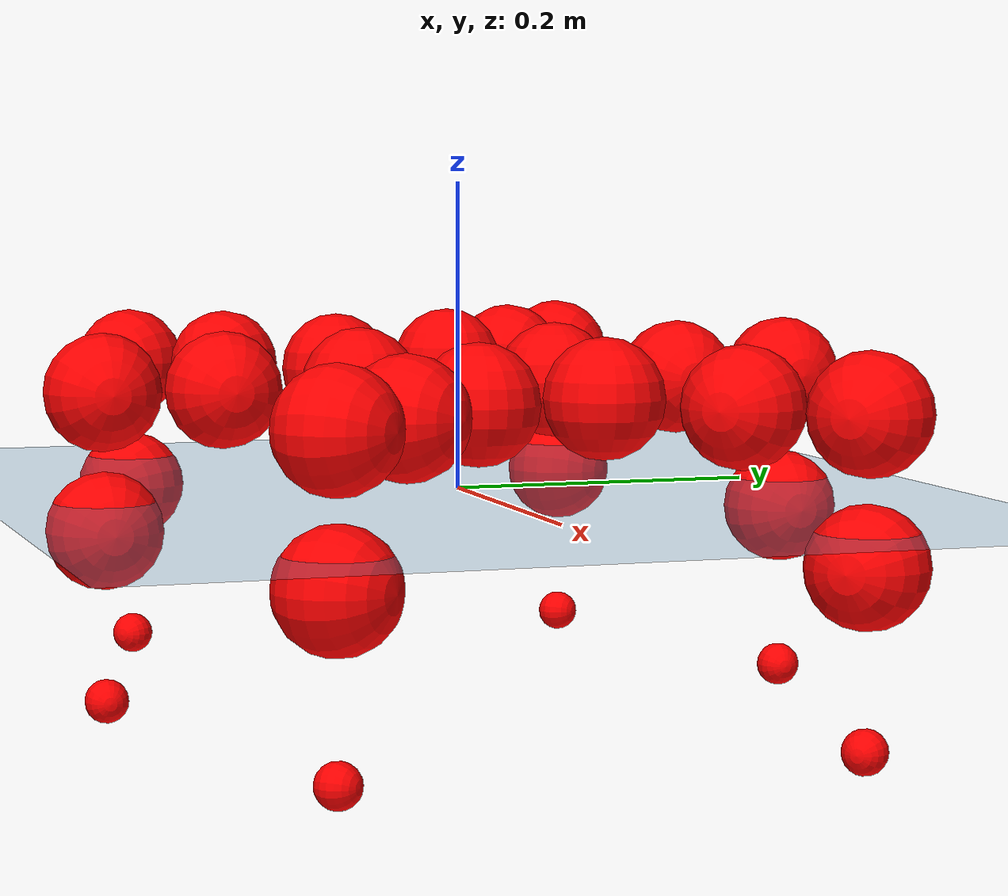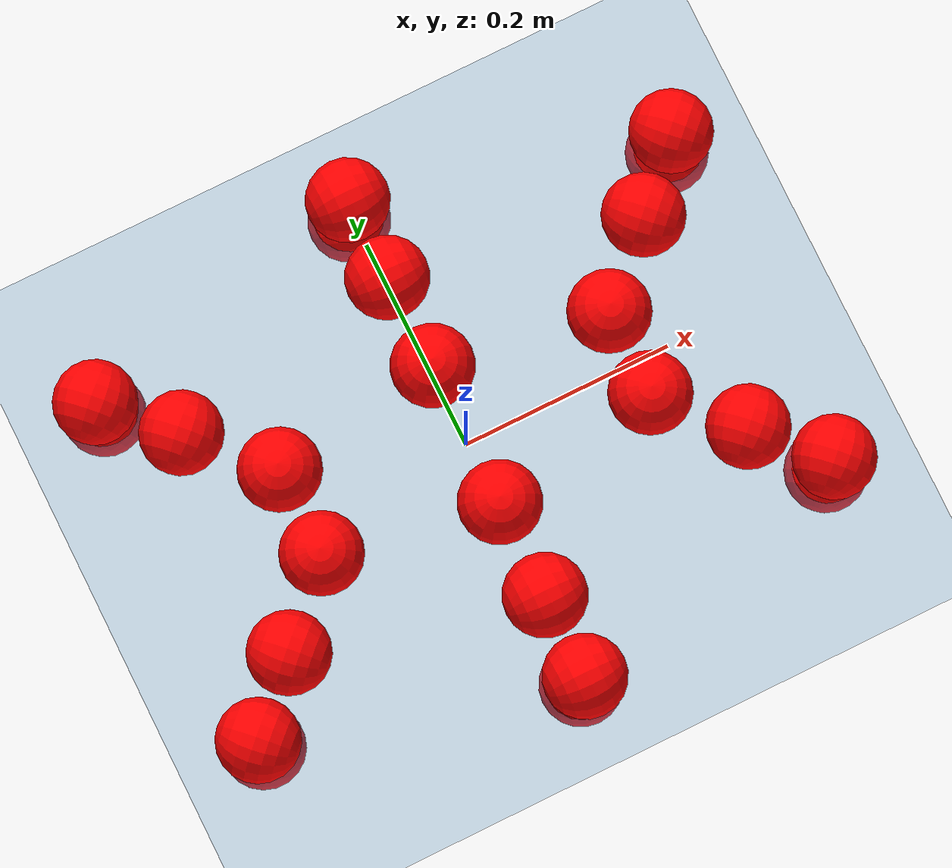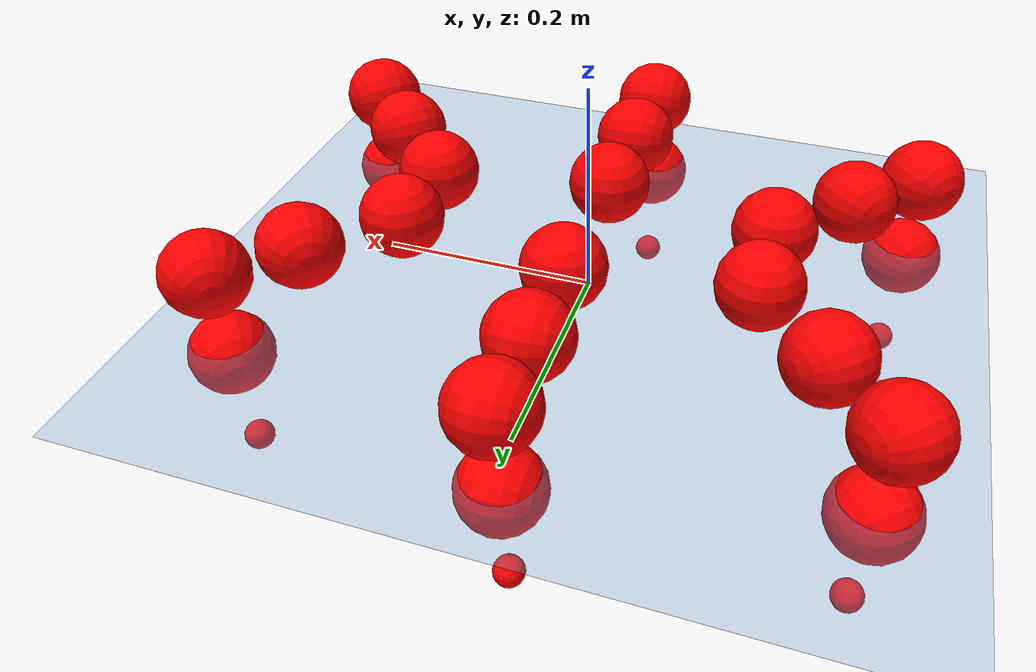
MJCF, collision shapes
<mujoco model="Golem">
  <compiler angle="radian" assetdir="assets" balanceinertia="true" inertiafromgeom="false"/>

  <option timestep="0.005" density="1.2" viscosity="2e-05"/>

  <size nkey="1"/>

  <visual>
    <quality shadowsize="8192"/>
    <map shadowclip="0.5"/>
  </visual>

  <default>
    <default class="/">
      <joint armature="0.01" damping="0.01" frictionloss="0.01"/>
      <geom contype="0" conaffinity="0" group="1" solref="-1000 -80"/>
      <site size="0.01 0.005 0.005" group="5"/>
      <general forcelimited="true" biastype="affine" gainprm="25" biasprm="0 -25 -0.5"/>
      <default class="visual">
        <geom type="mesh" group="2"/>
      </default>
      <default class="collision">
        <geom group="3"/>
      </default>
      <default class="foot">
        <geom size="0.01 0 0" condim="6" group="4" priority="1" solimp="0.015 1 0.01"/>
      </default>
      <default class="reward_collision_sphere">
        <geom group="5" rgba="1 0 0 1"/>
      </default>
    </default>
  </default>

  <asset>
    <texture type="skybox" colorspace="auto" name="//unnamed_texture_0" builtin="gradient" rgb1="0.95 0.95 0.95" rgb2="0.95 0.95 0.95" width="100" height="600"/>
    <texture type="2d" colorspace="auto" name="texplane" builtin="checker" rgb1="0.345 0.575 0.748" rgb2="0.345 0.575 0.748" markrgb="1 1 1" width="512" height="512"/>
    <material name="MatPlane" class="/" texture="texplane" texuniform="true" texrepeat="2 2" specular="0.9"/>
    <mesh name="body" class="/" file="body.stl" scale="0.001 0.001 0.001"/>
    <mesh name="coxa" class="/" file="coxa.stl" scale="0.001 0.001 0.001"/>
    <mesh name="femur" class="/" file="femur.stl" scale="0.001 0.001 0.001"/>
    <mesh name="tibia" class="/" file="tibia.stl" scale="0.001 0.001 0.001"/>
    <mesh name="tarsus" class="/" file="tarsus.stl" scale="0.001 0.001 0.001"/>
  </asset>

  <worldbody>
    <geom name="floor" class="/" size="100 100 0.125" type="plane" group="0" material="MatPlane"/>
    <light name="toplight_shadow" class="/" pos="0 0 5" dir="0.0990148 0.0990148 -0.990148" type="directional" ambient="0.04 0.04 0.04" diffuse="0.55 0.55 0.55" specular="0.12 0.12 0.12"/>
    <light name="toplight_fill" class="/" pos="0 0 5" dir="0.0990148 0.0990148 -0.990148" type="directional" castshadow="false" ambient="0.04 0.04 0.04" diffuse="0.3 0.3 0.3" specular="0.08 0.08 0.08"/>
    <body name="trunk" pos="0.000863473 0.000944862 0.00051612" quat="1 1.11323e-05 -0.000336863 3.97755e-05">
      <inertial pos="-0.000548045 0.000191407 -0.00465872" quat="0.999989 0.0028491 -0.00275423 -0.00247438" mass="3.0756" diaginertia="0.0108247 0.0021566 0.0141254"/>
      <joint name="//unnamed_joint_0" type="free"/>
      <geom name="//unnamed_geom_1" class="/" pos="0 0 0.0688218" quat="1 0 0 0" type="mesh" rgba="0.9 0.9 0.9 1" mesh="body"/>
      <site name="imu" class="/" pos="0.131677 -0.00433999 0.106453" size="0.00943493"/>
      <camera name="track" class="/" pos="0 -1.47265 0" quat="0.707107 0.707107 0 0" mode="trackcom"/>
      <camera name="ego_camera" class="/" pos="0.132446 0 0.107534" quat="-0.5 -0.5 0.5 0.5"/>
      <body name="coxa_RR" pos="-0.180709 -0.0612644 0.0684536" quat="0.382821 -4.17301e-05 -0.000256261 -0.923822">
        <inertial pos="-0.000140738 0.000385772 0.000210018" quat="0.999999 -0.000472951 0.000754707 0.000609892" mass="0.168491" diaginertia="0.0111415 0.00216574 0.0141885"/>
        <joint name="coxa_joint_RR" class="/" pos="0 0 0" axis="0.00159925 -0.00270568 -0.999995" range="-3.13918 3.14984" armature="0.00928852" damping="0.0111023" frictionloss="0.00948468"/>
        <geom name="//unnamed_geom_2" class="/" type="mesh" rgba="0.2 0.2 0.2 1" mesh="coxa"/>
        <geom name="//unnamed_geom_3" class="reward_collision_sphere" size="0.0377397" pos="-0.0305644 0 0"/>
        <body name="femur_RR" pos="0.0602885 0.00169785 -0.000247384" quat="0.500018 -0.499966 0.500019 0.499997">
          <inertial pos="-0.000857987 1.01775e-05 -0.00142742" quat="0.999985 0.000784282 0.00466609 -0.00267284" mass="0.168464" diaginertia="0.011021 0.0021807 0.0144181"/>
          <joint name="femur_joint_RR" class="/" pos="0 0 0" axis="0.00412066 -0.00142676 -0.99999" range="-3.14284 3.14165" armature="0.00950293" damping="0.00118185" frictionloss="0.00943787"/>
          <geom name="//unnamed_geom_4" class="/" type="mesh" rgba="0.9 0.9 0.9 1" mesh="femur"/>
          <geom name="//unnamed_geom_5" class="reward_collision_sphere" size="0.0377397"/>
          <body name="tibia_RR" pos="0.00102643 -0.0800685 -0.000399988" quat="-3.46731e-05 1 -2.27254e-05 -1.89218e-06">
            <inertial pos="0.000284646 0.000246908 -1.47502e-05" quat="0.999989 0.00348969 -0.00248668 -0.00201206" mass="0.169928" diaginertia="0.0111178 0.00218909 0.0146438"/>
            <joint name="tibia_joint_RR" class="/" pos="0 0 0" axis="-0.000485445 0.000114088 1" range="-3.12019 3.13613" armature="0.00982227" damping="0" frictionloss="0.00965287"/>
            <geom name="//unnamed_geom_6" class="/" type="mesh" rgba="0.2 0.2 0.2 1" mesh="tibia"/>
            <geom name="//unnamed_geom_7" class="reward_collision_sphere" size="0.0377397"/>
            <body name="tarsus_RR" pos="0.0895829 -0.00040974 -0.000700457" quat="1 -0.000107221 3.4757e-05 7.4685e-05">
              <inertial pos="0.0624578 0.000494142 -7.99311e-05" quat="0.496889 0.498727 0.500115 0.50424" mass="0.172947" diaginertia="0.0109987 0.00218308 0.0145678"/>
              <joint name="tarsus_joint_RR" class="/" pos="0 0 0" axis="0.000225735 -0.0003256 1" range="-3.13242 3.15549" armature="0.00969612" damping="0.0408573" frictionloss="0.00951924"/>
              <geom name="//unnamed_geom_8" class="/" type="mesh" rgba="0.9 0.9 0.9 1" mesh="tarsus"/>
              <geom name="foot_1" class="foot" size="0.00926573" pos="0.114107 0 0" quat="0 -0.707107 0 0.707107"/>
              <geom name="//unnamed_geom_10" class="reward_collision_sphere" size="0.0377397"/>
              <geom name="//unnamed_geom_11" class="reward_collision_sphere" size="0.0141524" pos="0.109522 0 0"/>
              <site name="foot_1" class="foot" pos="0.114107 0 0" quat="0 -0.707107 0 0.707107" size="0.00943493"/>
            </body>
          </body>
        </body>
      </body>
      <body name="coxa_RM" pos="-0.000493511 -0.0983542 0.068708" quat="0.707009 -0.000138385 -0.000394385 -0.707204">
        <inertial pos="0.000495808 0.000335915 -0.000139696" quat="0.999996 0.00222497 0.00123164 0.00127824" mass="0.167971" diaginertia="0.0109406 0.00216503 0.0144555"/>
        <joint name="coxa_joint_RM" class="/" pos="0 0 0" axis="0.000553623 0.000211839 -1" range="-3.14858 3.13421" armature="0.0096314" damping="0.0103084" frictionloss="0.00975502"/>
        <geom name="//unnamed_geom_12" class="/" type="mesh" rgba="0.2 0.2 0.2 1" mesh="coxa"/>
        <geom name="//unnamed_geom_13" class="reward_collision_sphere" size="0.0377397" pos="-0.0305644 0 0"/>
        <body name="femur_RM" pos="0.0594988 -0.000793739 -0.000764264" quat="0.500148 -0.49979 0.500299 0.499762">
          <inertial pos="0.000578253 -4.84801e-05 9.45255e-07" quat="0.999989 0.000643117 0.00272721 0.00363648" mass="0.167013" diaginertia="0.011009 0.00217076 0.0142833"/>
          <joint name="femur_joint_RM" class="/" pos="0 0 0" axis="-0.00124125 -0.000798863 -0.999999" range="-3.14252 3.13929" armature="0.00925984" damping="0.0113714" frictionloss="0.00941787"/>
          <geom name="//unnamed_geom_14" class="/" type="mesh" rgba="0.9 0.9 0.9 1" mesh="femur"/>
          <geom name="//unnamed_geom_15" class="reward_collision_sphere" size="0.0377397"/>
          <body name="tibia_RM" pos="-0.000355689 -0.0782669 -0.000166906" quat="-9.48981e-05 1 -1.33472e-05 -5.8719e-05">
            <inertial pos="-0.000869647 -0.000371551 0.000900495" quat="0.999997 -0.0016277 0.000858623 0.00141667" mass="0.166681" diaginertia="0.0109707 0.00219185 0.0142856"/>
            <joint name="tibia_joint_RM" class="/" pos="0 0 0" axis="0.000214661 0.00660578 0.999978" stiffness="0.000297582" range="-3.1456 3.14869" armature="0.00939838" damping="0.0130875" frictionloss="0.00963364"/>
            <geom name="//unnamed_geom_16" class="/" type="mesh" rgba="0.2 0.2 0.2 1" mesh="tibia"/>
            <geom name="//unnamed_geom_17" class="reward_collision_sphere" size="0.0377397"/>
            <body name="tarsus_RM" pos="0.0880326 -0.00071776 0.00100098" quat="1 0.000111531 -5.3707e-05 -0.000137199">
              <inertial pos="0.06077 -0.000136392 0.000406886" quat="0.498959 0.499563 0.499396 0.502077" mass="0.167655" diaginertia="0.010941 0.00215768 0.0142635"/>
              <joint name="tarsus_joint_RM" class="/" pos="0 0 0" axis="-0.00192249 0.00146768 0.999997" range="-3.14395 3.13684" armature="0.00941744" damping="0.00789176" frictionloss="0.00932625"/>
              <geom name="//unnamed_geom_18" class="/" type="mesh" rgba="0.9 0.9 0.9 1" mesh="tarsus"/>
              <geom name="foot_2" class="foot" size="0.009294" pos="0.114107 0 0" quat="0 -0.707107 0 0.707107"/>
              <geom name="//unnamed_geom_20" class="reward_collision_sphere" size="0.0377397"/>
              <geom name="//unnamed_geom_21" class="reward_collision_sphere" size="0.0141524" pos="0.109522 0 0"/>
              <site name="foot_2" class="foot" pos="0.114107 0 0" quat="0 -0.707107 0 0.707107" size="0.00943493"/>
            </body>
          </body>
        </body>
      </body>
      <body name="coxa_RF" pos="0.181352 -0.0611235 0.0686742" quat="0.92383 -0.000163642 0.00019213 -0.382803">
        <inertial pos="-0.000993218 0.000513923 -7.64922e-05" quat="1 0.000157724 0.000381265 0.000185686" mass="0.170206" diaginertia="0.0107805 0.00213553 0.0143165"/>
        <joint name="coxa_joint_RF" class="/" pos="0 0 0" axis="-0.00337664 -0.00142268 -0.999993" range="-3.12595 3.13657" armature="0.0091924" damping="0.00808642" frictionloss="0.00950308"/>
        <geom name="//unnamed_geom_22" class="/" type="mesh" rgba="0.2 0.2 0.2 1" mesh="coxa"/>
        <geom name="//unnamed_geom_23" class="reward_collision_sphere" size="0.0377397" pos="-0.0305644 0 0"/>
        <body name="femur_RF" pos="0.0596436 -0.000643338 -0.000829107" quat="0.499867 -0.499931 0.500102 0.5001">
          <inertial pos="-0.000798874 0.000632055 -0.000832915" quat="1 -0.00013043 0.000724739 2.23336e-05" mass="0.169371" diaginertia="0.0108339 0.0021642 0.014323"/>
          <joint name="femur_joint_RF" class="/" pos="0 0 0" axis="0.00412436 0.00182838 -0.99999" range="-3.12822 3.15424" armature="0.00935935" damping="0.0110993" frictionloss="0.00928711"/>
          <geom name="//unnamed_geom_24" class="/" type="mesh" rgba="0.9 0.9 0.9 1" mesh="femur"/>
          <geom name="//unnamed_geom_25" class="reward_collision_sphere" size="0.0377397"/>
          <body name="tibia_RF" pos="0.000149504 -0.0791837 -0.000987091" quat="5.78307e-06 1 1.70311e-06 2.82022e-06">
            <inertial pos="-0.000316307 0.000307293 0.000607509" quat="0.999989 0.00370848 -0.00250368 0.00155426" mass="0.166693" diaginertia="0.0109616 0.00216067 0.01439"/>
            <joint name="tibia_joint_RF" class="/" pos="0 0 0" axis="0.00246691 0.00457652 0.999986" stiffness="0.00155294" range="-3.14503 3.15027" armature="0.00942728" damping="0" frictionloss="0.00928596"/>
            <geom name="//unnamed_geom_26" class="/" type="mesh" rgba="0.2 0.2 0.2 1" mesh="tibia"/>
            <geom name="//unnamed_geom_27" class="reward_collision_sphere" size="0.0377397"/>
            <body name="tarsus_RF" pos="0.0891589 -9.71561e-05 0.000413205" quat="1 6.34253e-05 -0.000282939 -0.000151086">
              <inertial pos="0.0600024 0.000203551 0.000327906" quat="0.499096 0.500418 0.501673 0.498808" mass="0.167709" diaginertia="0.0109 0.00219878 0.0144539"/>
              <joint name="tarsus_joint_RF" class="/" pos="0 0 0" axis="-0.003956 0.00499022 0.99998" range="-3.12123 3.13616" armature="0.00920696" damping="0" frictionloss="0.0100369"/>
              <geom name="//unnamed_geom_28" class="/" type="mesh" rgba="0.9 0.9 0.9 1" mesh="tarsus"/>
              <geom name="foot_3" class="foot" size="0.00960978" pos="0.114107 0 0" quat="0 -0.707107 0 0.707107"/>
              <geom name="//unnamed_geom_30" class="reward_collision_sphere" size="0.0377397"/>
              <geom name="//unnamed_geom_31" class="reward_collision_sphere" size="0.0141524" pos="0.109522 0 0"/>
              <site name="foot_3" class="foot" pos="0.114107 0 0" quat="0 -0.707107 0 0.707107" size="0.00943493"/>
            </body>
          </body>
        </body>
      </body>
      <body name="coxa_LR" pos="-0.181416 0.0636327 0.0704786" quat="0.382631 1.79066e-05 8.63473e-05 0.923901">
        <inertial pos="-0.000231902 0.000132777 -0.000454316" quat="0.999997 -0.000574022 0.00209265 -0.000682413" mass="0.165102" diaginertia="0.010755 0.0021239 0.0141878"/>
        <joint name="coxa_joint_LR" class="/" pos="0 0 0" axis="0.00105221 0.000719394 -0.999999" range="-3.14116 3.16147" armature="0.00922637" damping="0.00827307" frictionloss="0.00890452"/>
        <geom name="//unnamed_geom_32" class="/" type="mesh" rgba="0.2 0.2 0.2 1" mesh="coxa"/>
        <geom name="//unnamed_geom_33" class="reward_collision_sphere" size="0.0377397" pos="-0.0305644 0 0"/>
        <body name="femur_LR" pos="0.0612046 -0.00301565 -0.00139326" quat="0.499979 -0.499989 0.500009 0.500023">
          <inertial pos="0.000356475 -0.000102232 0.000156152" quat="0.999989 -0.0028846 0.00193421 -0.00321524" mass="0.169868" diaginertia="0.011188 0.00222536 0.0145252"/>
          <joint name="femur_joint_LR" class="/" pos="0 0 0" axis="0.00182605 -0.000566937 0.999998" range="-3.14542 3.14814" armature="0.00907787" damping="0.00540749" frictionloss="0.00940479"/>
          <geom name="//unnamed_geom_34" class="/" type="mesh" rgba="0.9 0.9 0.9 1" mesh="femur"/>
          <geom name="//unnamed_geom_35" class="reward_collision_sphere" size="0.0377397"/>
          <body name="tibia_LR" pos="0.000645015 -0.0801054 -0.00121127" quat="-6.04218e-05 1 0.000164841 -0.00013917">
            <inertial pos="-0.00118369 0.00103751 0.000223596" quat="0.999999 -0.00116666 0.000982743 0.000764729" mass="0.169812" diaginertia="0.0111752 0.00216374 0.0142051"/>
            <joint name="tibia_joint_LR" class="/" pos="0 0 0" axis="-0.000259959 0.000486559 -1" range="-3.14349 3.14078" armature="0.00939025" damping="0.00247318" frictionloss="0.00898993"/>
            <geom name="//unnamed_geom_36" class="/" type="mesh" rgba="0.2 0.2 0.2 1" mesh="tibia"/>
            <geom name="//unnamed_geom_37" class="reward_collision_sphere" size="0.0377397"/>
            <body name="tarsus_LR" pos="0.0900705 -0.000110734 0.00238235" quat="1 0.000356578 2.92043e-05 0.00020286">
              <inertial pos="0.0626895 0.00137095 0.000387639" quat="0.496629 0.501393 0.501215 0.500748" mass="0.164605" diaginertia="0.0107153 0.00212945 0.014101"/>
              <joint name="tarsus_joint_LR" class="/" pos="0 0 0" axis="0.000358115 0.000448944 -1" stiffness="0.00190367" range="-3.14911 3.12975" armature="0.00886126" damping="0.0280228" frictionloss="0.00955463"/>
              <geom name="//unnamed_geom_38" class="/" type="mesh" rgba="0.9 0.9 0.9 1" mesh="tarsus"/>
              <geom name="foot_4" class="foot" size="0.00938909" pos="0.114107 0 0" quat="0.707107 0 -0.707107 0"/>
              <geom name="//unnamed_geom_40" class="reward_collision_sphere" size="0.0377397"/>
              <geom name="//unnamed_geom_41" class="reward_collision_sphere" size="0.0141524" pos="0.109522 0 0"/>
              <site name="foot_4" class="foot" pos="0.114107 0 0" quat="0.707107 0 -0.707107 0" size="0.00943493"/>
            </body>
          </body>
        </body>
      </body>
      <body name="coxa_LM" pos="-0.000204301 0.0961805 0.0695443" quat="0.707011 0.000472712 0.000239324 0.707202">
        <inertial pos="0.000346584 -0.00041979 0.00199064" quat="1 0.000425087 0.000462404 0.000512654" mass="0.166978" diaginertia="0.0108936 0.00215051 0.0142194"/>
        <joint name="coxa_joint_LM" class="/" pos="0 0 0" axis="0.00081348 0.00244415 -0.999997" range="-3.14005 3.14371" armature="0.0100479" damping="0" frictionloss="0.00939796"/>
        <geom name="//unnamed_geom_42" class="/" type="mesh" rgba="0.2 0.2 0.2 1" mesh="coxa"/>
        <geom name="//unnamed_geom_43" class="reward_collision_sphere" size="0.0377397" pos="-0.0305644 0 0"/>
        <body name="femur_LM" pos="0.0571028 0.00134254 -0.000475706" quat="0.500119 -0.50021 0.49962 0.500051">
          <inertial pos="3.25426e-05 -0.00019762 -0.000402334" quat="0.999989 -0.00318902 -0.00194552 -0.00290224" mass="0.16697" diaginertia="0.0108116 0.00215062 0.0142531"/>
          <joint name="femur_joint_LM" class="/" pos="0 0 0" axis="0.00211709 0.000825525 0.999997" stiffness="0.000894388" range="-3.15784 3.14313" armature="0.00900299" damping="0.00435634" frictionloss="0.00939522"/>
          <geom name="//unnamed_geom_44" class="/" type="mesh" rgba="0.9 0.9 0.9 1" mesh="femur"/>
          <geom name="//unnamed_geom_45" class="reward_collision_sphere" size="0.0377397"/>
          <body name="tibia_LM" pos="-0.000724289 -0.0770867 0.000764867" quat="2.80198e-05 1 -7.90422e-06 2.40866e-05">
            <inertial pos="0.000731186 -0.00161397 0.00134653" quat="0.999999 -0.000386946 -0.000433853 -0.000885138" mass="0.168414" diaginertia="0.0111258 0.00216579 0.0143221"/>
            <joint name="tibia_joint_LM" class="/" pos="0 0 0" axis="-0.00432487 -0.00425431 -0.999982" range="-3.13729 3.1427" armature="0.00909391" damping="0.00101928" frictionloss="0.00966873"/>
            <geom name="//unnamed_geom_46" class="/" type="mesh" rgba="0.2 0.2 0.2 1" mesh="tibia"/>
            <geom name="//unnamed_geom_47" class="reward_collision_sphere" size="0.0377397"/>
            <body name="tarsus_LM" pos="0.0907802 -0.000311089 -0.00120964" quat="1 0.00031589 -0.000225201 7.48184e-05">
              <inertial pos="0.0616731 2.12359e-05 -0.000994557" quat="0.500027 0.500353 0.499651 0.499969" mass="0.169999" diaginertia="0.011024 0.00223462 0.0146741"/>
              <joint name="tarsus_joint_LM" class="/" pos="0 0 0" axis="0.00354321 -0.000458883 -0.999994" range="-3.17044 3.14453" armature="0.009505" damping="0" frictionloss="0.00936625"/>
              <geom name="//unnamed_geom_48" class="/" type="mesh" rgba="0.9 0.9 0.9 1" mesh="tarsus"/>
              <geom name="foot_5" class="foot" size="0.00947004" pos="0.114107 0 0" quat="0.707107 0 -0.707107 0"/>
              <geom name="//unnamed_geom_50" class="reward_collision_sphere" size="0.0377397"/>
              <geom name="//unnamed_geom_51" class="reward_collision_sphere" size="0.0141524" pos="0.109522 0 0"/>
              <site name="foot_5" class="foot" pos="0.114107 0 0" quat="0.707107 0 -0.707107 0" size="0.00943493"/>
            </body>
          </body>
        </body>
      </body>
      <body name="coxa_LF" pos="0.181193 0.0622855 0.0702249" quat="0.923778 0.000151797 -2.57407e-05 0.382929">
        <inertial pos="0.000211717 0.00115206 0.000445479" quat="0.999999 0.000801949 -0.00137694 7.90732e-05" mass="0.171091" diaginertia="0.0112633 0.00218317 0.0146158"/>
        <joint name="coxa_joint_LF" class="/" pos="0 0 0" axis="-8.10441e-05 -0.000232414 -1" range="-3.14244 3.13713" armature="0.0101523" damping="0.00560088" frictionloss="0.00947852"/>
        <geom name="//unnamed_geom_52" class="/" type="mesh" rgba="0.2 0.2 0.2 1" mesh="coxa"/>
        <geom name="//unnamed_geom_53" class="reward_collision_sphere" size="0.0377397" pos="-0.0305644 0 0"/>
        <body name="femur_LF" pos="0.0605039 -0.00112032 -0.00168199" quat="0.500006 -0.500032 0.499978 0.499983">
          <inertial pos="-0.000848788 -0.000523779 0.00130191" quat="1 -0.000504272 -0.000175445 -0.00070196" mass="0.168123" diaginertia="0.0110976 0.0022026 0.0143939"/>
          <joint name="femur_joint_LF" class="/" pos="0 0 0" axis="-0.00426858 0.00189341 0.999989" range="-3.14313 3.12025" armature="0.00946457" damping="0.00206177" frictionloss="0.0096081"/>
          <geom name="//unnamed_geom_54" class="/" type="mesh" rgba="0.9 0.9 0.9 1" mesh="femur"/>
          <geom name="//unnamed_geom_55" class="reward_collision_sphere" size="0.0377397"/>
          <body name="tibia_LF" pos="0.000937846 -0.0790403 0.000812658" quat="2.05568e-05 1 1.14784e-05 -1.22254e-05">
            <inertial pos="0.000325751 -0.000530199 -9.25882e-05" quat="0.999997 -0.00159564 -0.00167507 -1.00691e-05" mass="0.168381" diaginertia="0.0111046 0.00216294 0.0144065"/>
            <joint name="tibia_joint_LF" class="/" pos="0 0 0" axis="0.00058967 0.00259855 -0.999996" range="-3.13808 3.13429" armature="0.00900444" damping="0.00110864" frictionloss="0.0096692"/>
            <geom name="//unnamed_geom_56" class="/" type="mesh" rgba="0.2 0.2 0.2 1" mesh="tibia"/>
            <geom name="//unnamed_geom_57" class="reward_collision_sphere" size="0.0377397"/>
            <body name="tarsus_LF" pos="0.0900684 -0.000670906 0.000475497" quat="1 -0.000165343 -0.000741107 -0.000100239">
              <inertial pos="0.0634104 0.000275702 0.000477775" quat="0.500166 0.499915 0.50003 0.499889" mass="0.168776" diaginertia="0.0108067 0.0021282 0.0143178"/>
              <joint name="tarsus_joint_LF" class="/" pos="0 0 0" axis="-0.00149356 0.00844931 -0.999963" stiffness="0.0287548" range="-3.14199 3.13867" armature="0.00933905" damping="0.0233287" frictionloss="0.00901457"/>
              <geom name="//unnamed_geom_58" class="/" type="mesh" rgba="0.9 0.9 0.9 1" mesh="tarsus"/>
              <geom name="foot_6" class="foot" size="0.00933443" pos="0.114107 0 0" quat="0.707107 0 -0.707107 0"/>
              <geom name="//unnamed_geom_60" class="reward_collision_sphere" size="0.0377397"/>
              <geom name="//unnamed_geom_61" class="reward_collision_sphere" size="0.0141524" pos="0.109522 0 0"/>
              <site name="foot_6" class="foot" pos="0.114107 0 0" quat="0.707107 0 -0.707107 0" size="0.00943493"/>
            </body>
          </body>
        </body>
      </body>
    </body>
  </worldbody>

  <contact>
    <pair class="/" geom1="floor" geom2="foot_1" name="//unnamed_contact_0"/>
    <pair class="/" geom1="floor" geom2="foot_2" name="//unnamed_contact_1"/>
    <pair class="/" geom1="floor" geom2="foot_3" name="//unnamed_contact_2"/>
    <pair class="/" geom1="floor" geom2="foot_4" name="//unnamed_contact_3"/>
    <pair class="/" geom1="floor" geom2="foot_5" name="//unnamed_contact_4"/>
    <pair class="/" geom1="floor" geom2="foot_6" name="//unnamed_contact_5"/>
  </contact>

  <actuator>
    <general name="coxa_joint_RR" class="/" joint="coxa_joint_RR" forcerange="-6.68504 6.68504" gainprm="22.8003" biasprm="0 -22.8003 -0.502725"/>
    <general name="femur_joint_RR" class="/" joint="femur_joint_RR" forcerange="-6.6808 6.6808" gainprm="22.8003" biasprm="0 -22.8003 -0.502725"/>
    <general name="tibia_joint_RR" class="/" joint="tibia_joint_RR" forcerange="-6.57467 6.57467" gainprm="22.8003" biasprm="0 -22.8003 -0.502725"/>
    <general name="tarsus_joint_RR" class="/" joint="tarsus_joint_RR" forcerange="-6.64634 6.64634" gainprm="22.8003" biasprm="0 -22.8003 -0.502725"/>
    <general name="coxa_joint_RM" class="/" joint="coxa_joint_RM" forcerange="-6.87524 6.87524" gainprm="22.8003" biasprm="0 -22.8003 -0.502725"/>
    <general name="femur_joint_RM" class="/" joint="femur_joint_RM" forcerange="-6.87069 6.87069" gainprm="22.8003" biasprm="0 -22.8003 -0.502725"/>
    <general name="tibia_joint_RM" class="/" joint="tibia_joint_RM" forcerange="-6.79664 6.79664" gainprm="22.8003" biasprm="0 -22.8003 -0.502725"/>
    <general name="tarsus_joint_RM" class="/" joint="tarsus_joint_RM" forcerange="-7.16615 7.16615" gainprm="22.8003" biasprm="0 -22.8003 -0.502725"/>
    <general name="coxa_joint_RF" class="/" joint="coxa_joint_RF" forcerange="-7.01058 7.01058" gainprm="22.8003" biasprm="0 -22.8003 -0.502725"/>
    <general name="femur_joint_RF" class="/" joint="femur_joint_RF" forcerange="-6.9446 6.9446" gainprm="22.8003" biasprm="0 -22.8003 -0.502725"/>
    <general name="tibia_joint_RF" class="/" joint="tibia_joint_RF" forcerange="-7.06331 7.06331" gainprm="22.8003" biasprm="0 -22.8003 -0.502725"/>
    <general name="tarsus_joint_RF" class="/" joint="tarsus_joint_RF" forcerange="-6.69351 6.69351" gainprm="22.8003" biasprm="0 -22.8003 -0.502725"/>
    <general name="coxa_joint_LR" class="/" joint="coxa_joint_LR" forcerange="-6.89571 6.89571" gainprm="22.8003" biasprm="0 -22.8003 -0.502725"/>
    <general name="femur_joint_LR" class="/" joint="femur_joint_LR" forcerange="-6.94021 6.94021" gainprm="22.8003" biasprm="0 -22.8003 -0.502725"/>
    <general name="tibia_joint_LR" class="/" joint="tibia_joint_LR" forcerange="-7.07561 7.07561" gainprm="22.8003" biasprm="0 -22.8003 -0.502725"/>
    <general name="tarsus_joint_LR" class="/" joint="tarsus_joint_LR" forcerange="-7.10135 7.10135" gainprm="22.8003" biasprm="0 -22.8003 -0.502725"/>
    <general name="coxa_joint_LM" class="/" joint="coxa_joint_LM" forcerange="-7.0726 7.0726" gainprm="22.8003" biasprm="0 -22.8003 -0.502725"/>
    <general name="femur_joint_LM" class="/" joint="femur_joint_LM" forcerange="-6.84537 6.84537" gainprm="22.8003" biasprm="0 -22.8003 -0.502725"/>
    <general name="tibia_joint_LM" class="/" joint="tibia_joint_LM" forcerange="-7.05017 7.05017" gainprm="22.8003" biasprm="0 -22.8003 -0.502725"/>
    <general name="tarsus_joint_LM" class="/" joint="tarsus_joint_LM" forcerange="-6.76387 6.76387" gainprm="22.8003" biasprm="0 -22.8003 -0.502725"/>
    <general name="coxa_joint_LF" class="/" joint="coxa_joint_LF" forcerange="-6.97619 6.97619" gainprm="22.8003" biasprm="0 -22.8003 -0.502725"/>
    <general name="femur_joint_LF" class="/" joint="femur_joint_LF" forcerange="-6.96798 6.96798" gainprm="22.8003" biasprm="0 -22.8003 -0.502725"/>
    <general name="tibia_joint_LF" class="/" joint="tibia_joint_LF" forcerange="-6.68156 6.68156" gainprm="22.8003" biasprm="0 -22.8003 -0.502725"/>
    <general name="tarsus_joint_LF" class="/" joint="tarsus_joint_LF" forcerange="-7.05886 7.05886" gainprm="22.8003" biasprm="0 -22.8003 -0.502725"/>
  </actuator>

  <sensor>
    <gyro site="imu" name="imu_angular_velocity"/>
    <velocimeter site="imu" name="imu_linear_velocity"/>
    <framelinvel objtype="site" objname="foot_1" name="foot_1_global_linear_velocity"/>
    <framelinvel objtype="site" objname="foot_2" name="foot_2_global_linear_velocity"/>
    <framelinvel objtype="site" objname="foot_3" name="foot_3_global_linear_velocity"/>
    <framelinvel objtype="site" objname="foot_4" name="foot_4_global_linear_velocity"/>
    <framelinvel objtype="site" objname="foot_5" name="foot_5_global_linear_velocity"/>
    <framelinvel objtype="site" objname="foot_6" name="foot_6_global_linear_velocity"/>
  </sensor>

  <keyframe>
    <key name="home" qpos="0 0 0.1457 1 0 0 0 0 0 0 0 0 0 0 0 0 0 0 0 0 0 0 0 0 0 0 0 0 0 0 0"/>
  </keyframe>
</mujoco>
